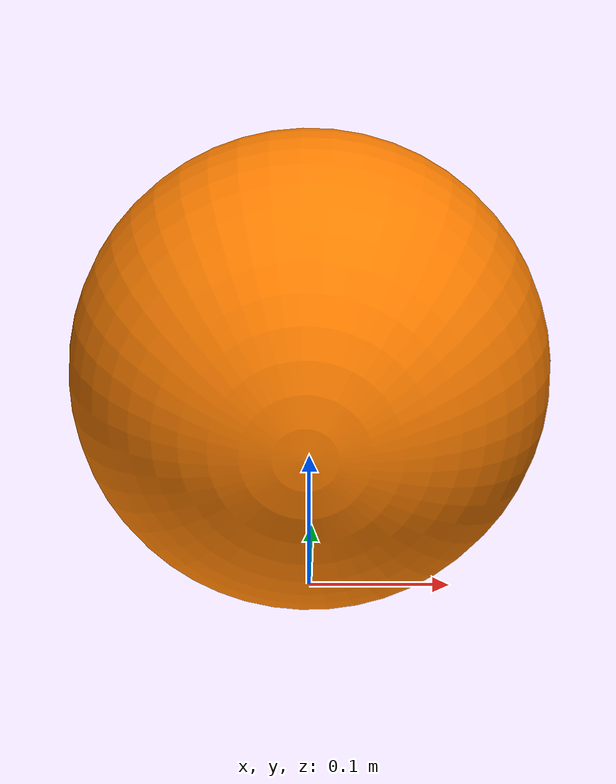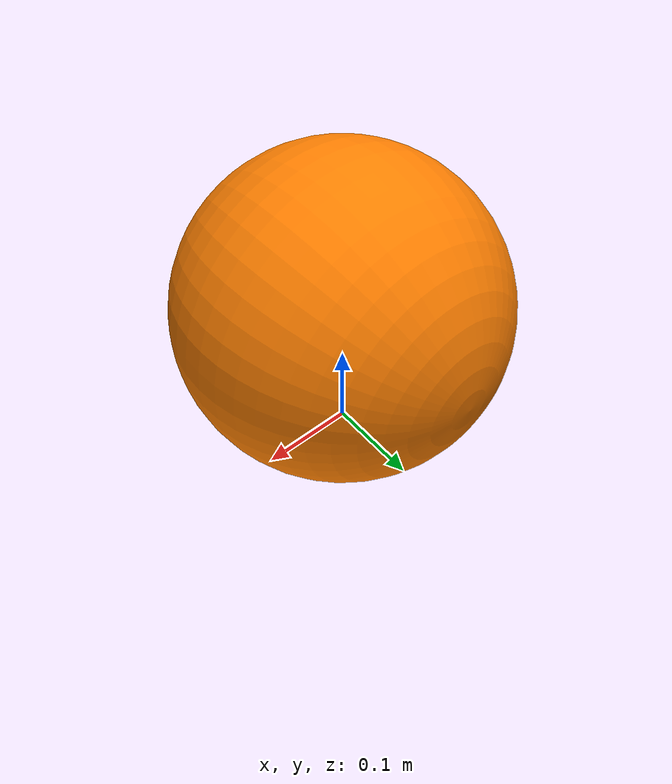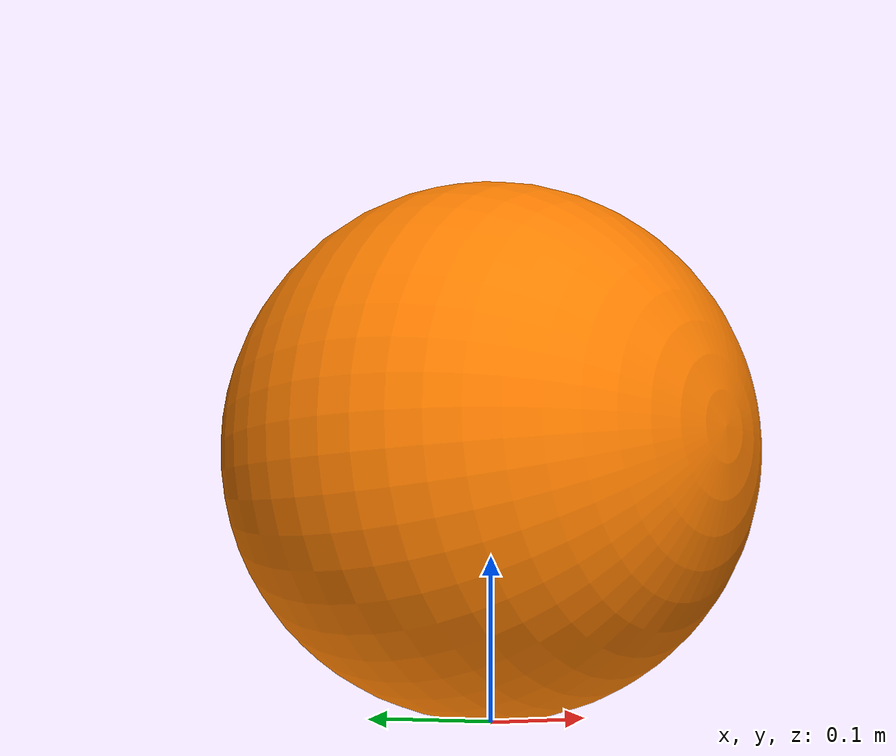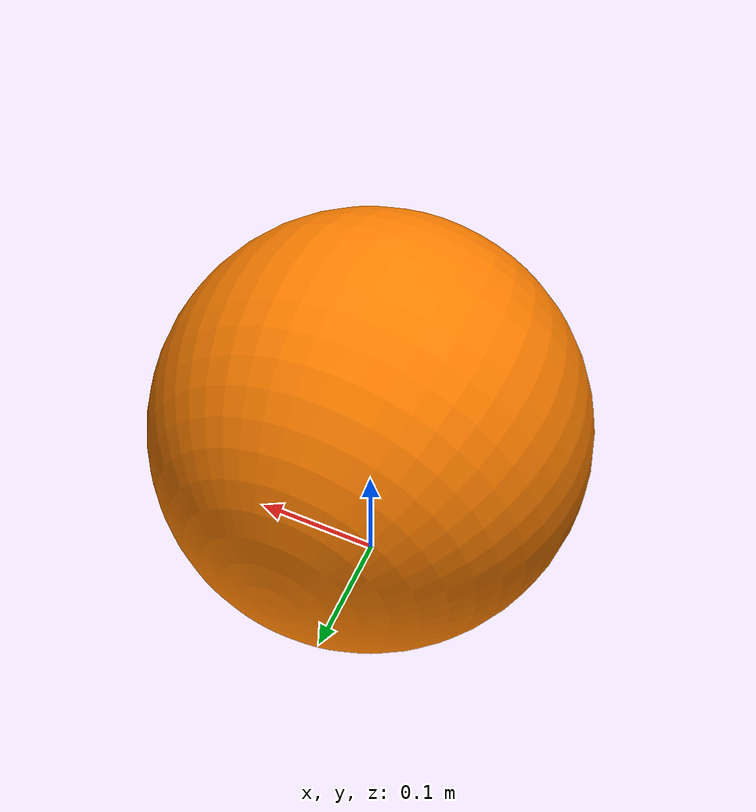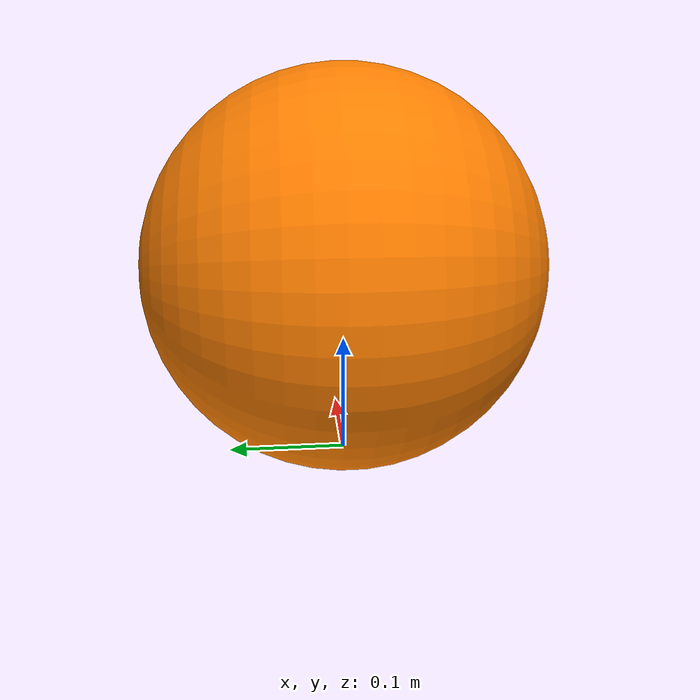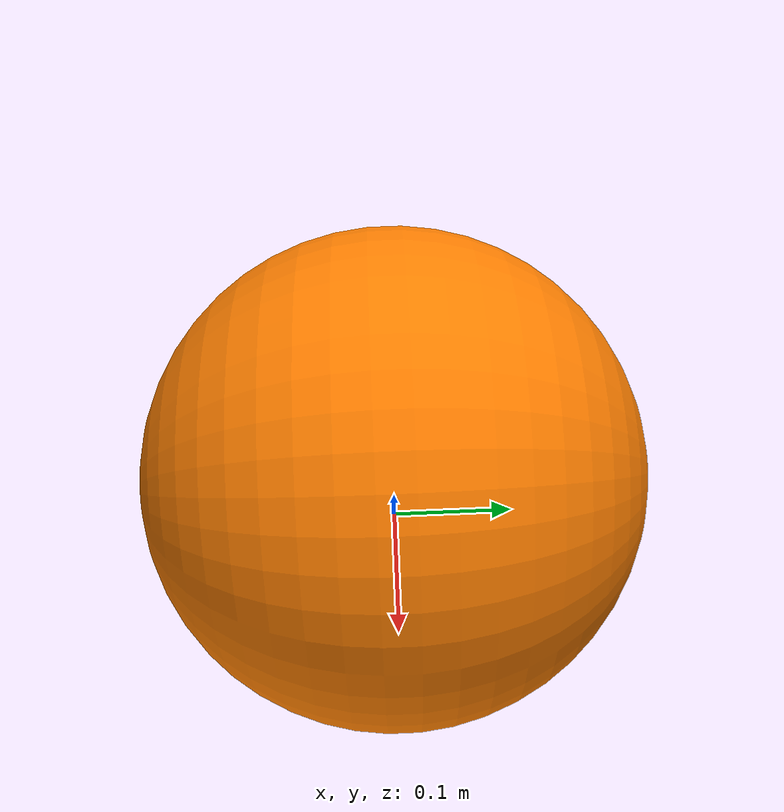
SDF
<?xml version="1.0" encoding="utf-8"?>
<sdf version="1.5">
  <model name="CargoBall">
    <pose>0 0 0.1651 0 0 0</pose>
    <link name="BallBody">
      <gravity>1</gravity>
      <self_collide>0</self_collide>
      <pose>-1.26368241587018E-18 0 0 0 0 0</pose>
      <must_be_base_link>1</must_be_base_link>
      <velocity_decay>
        <linear>0</linear>
        <angular>0</angular>
      </velocity_decay>
      <inertial>
        <mass>0.5</mass>
        <pose>0 0 0 0 0 0</pose>
        <inertia>
          <ixx>0</ixx>
          <ixy>0</ixy>
          <ixz>0</ixz>
          <iyy>0</iyy>
          <iyz>0</iyz>
          <izz>0</izz>
        </inertia>
      </inertial>
      <collision name="BallBody_collision">
        <pose>-3.79104724761053E-18 0 0 0 0 0</pose>
        <geometry>
          <mesh>
            <scale>1 1 1</scale>
            <uri>model://CargoBall/meshes/BallBody_col.STL</uri>
          </mesh>
        </geometry>
        <surface>
         <contact>
            <ode>
              <max_vel>0</max_vel>
              <kp>1000000</kp>
              <kd>10</kd>
            </ode>
          </contact>
          <friction>
            <ode>
              <mu>1</mu>
              <mu2>1</mu2>
            </ode>
          </friction>
        </surface>
      </collision>
      <visual name="BallBody_visual">
        <pose>-3.79104724761053E-18 0 0 0 0 0</pose>
        <material>
          <ambient>1 0.5 0 1</ambient>
          <diffuse>1 0.5 0 1</diffuse>
        </material>
        <geometry>
          <mesh>
            <scale>1 1 1</scale>
            <uri>model://CargoBall/meshes/BallBody.STL</uri>
          </mesh>
        </geometry>
      </visual>
    </link>
  </model>
</sdf>
